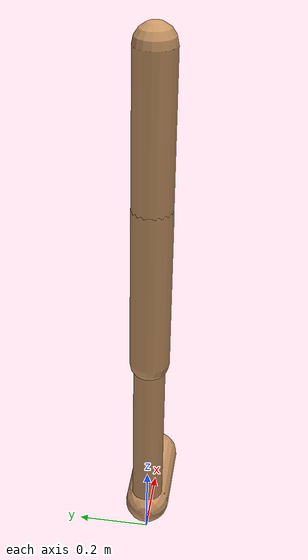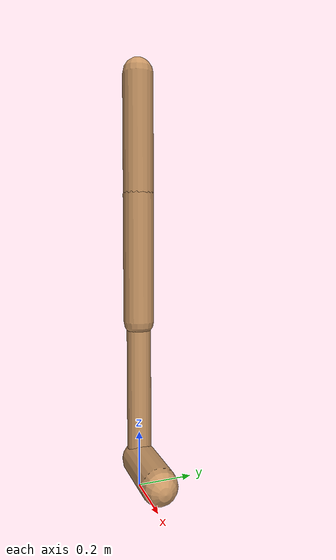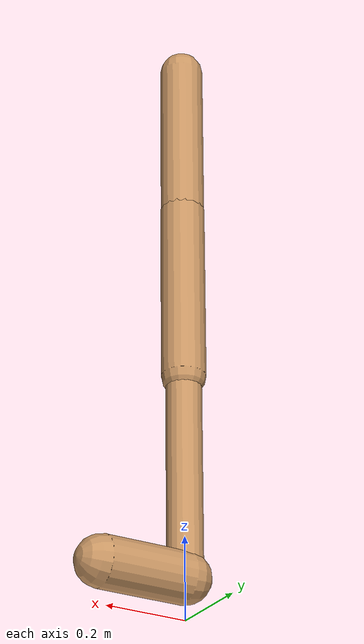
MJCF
<mujoco model="walker2d">
  <compiler angle="degree" coordinate="global" inertiafromgeom="true" />
  <default>
    <joint armature="0.01" damping=".1" limited="true" />
    <geom conaffinity="0" condim="3" contype="1" density="1000" friction="0.8 .1 .1" rgba="0.8 0.6 .4 1" />
  </default>
  <option integrator="RK4" timestep="0.002" />
  <worldbody>

    <body name="torso" pos="0 0 -0.006961106256902982">
      <joint armature="0" axis="1 0 0" damping="0" limited="false" name="ignorex" pos="0 0 0" stiffness="0" type="slide" />
      <joint armature="0" axis="0 0 1" damping="0" limited="false" name="ignorez" pos="0 0 0" ref="1.25" stiffness="0" type="slide" />
      <joint armature="0" axis="0 1 0" damping="0" limited="false" name="ignorey" pos="0 0 0" stiffness="0" type="hinge" />
      <geom fromto="0 0 1.45 0 0 1.05" name="torso_geom" size="0.052419366021524354" type="capsule" />
      <body name="thigh">
        <joint axis="0 -1 0" name="thigh_joint" pos="0 0 1.05" range="-150 0" type="hinge" />
        <geom fromto="0.0 0.0 1.05 0.0 0.0 0.6032973661216908" name="thigh_geom" size="0.053075739981684536" type="capsule" />
        <body name="leg" pos="0.0 0.0 0.003297366121690848">
          <joint axis="0 -1 0" name="leg_joint" pos="0 0 0.6" range="-150 0" type="hinge" />
          <geom fromto="0.0 0.0 0.6 0.0 0.0 0.1036637401352121" name="leg_geom" size="0.04246059198534763" type="capsule" />
          <body name="foot" pos="0.0 0.0 0.00366374013521209">
            <joint axis="0 -1 0" name="foot_joint" pos="0 0 0.1" range="-45 45" type="hinge" />
            <geom fromto="-0.0 0.0 0.09999999999999999 0.21335682803399472 0.0 0.09999999999999999" name="foot_geom" size="0.061248355854962355" type="capsule" />
          </body>
        </body>
      </body>

      <body name="thigh_left">
        <joint axis="0 -1 0" name="thigh_left_joint" pos="0 0 1.05" range="-150 0" type="hinge" />
        <geom fromto="0.0 0.0 1.05 0.0 0.0 0.6032973661216908" name="thigh_left_geom" rgba=".7 .3 .6 1" size="0.053075739981684536" type="capsule" />
        <body name="leg_left" pos="0.0 0.0 0.003297366121690848">
          <joint axis="0 -1 0" name="leg_left_joint" pos="0 0 0.6" range="-150 0" type="hinge" />
          <geom fromto="0.0 0.0 0.6 0.0 0.0 0.1036637401352121" name="leg_left_geom" rgba=".7 .3 .6 1" size="0.04246059198534763" type="capsule" />
          <body name="foot_left" pos="0.0 0.0 0.00366374013521209">
            <joint axis="0 -1 0" name="foot_left_joint" pos="0 0 0.1" range="-45 45" type="hinge" />
            <geom fromto="-0.0 0.0 0.09999999999999999 0.21335682803399472 0.0 0.09999999999999999" name="foot_left_geom" rgba=".7 .3 .6 1" size="0.061248355854962355" type="capsule" />
          </body>
        </body>
      </body>
    </body>
  </worldbody>
  <actuator>

    <motor ctrllimited="true" ctrlrange="-1.0 1.0" gear="100" joint="thigh_joint" />
    <motor ctrllimited="true" ctrlrange="-1.0 1.0" gear="100" joint="leg_joint" />
    <motor ctrllimited="true" ctrlrange="-1.0 1.0" gear="100" joint="foot_joint" />
    <motor ctrllimited="true" ctrlrange="-1.0 1.0" gear="100" joint="thigh_left_joint" />
    <motor ctrllimited="true" ctrlrange="-1.0 1.0" gear="100" joint="leg_left_joint" />
    <motor ctrllimited="true" ctrlrange="-1.0 1.0" gear="100" joint="foot_left_joint" />

  </actuator>
</mujoco>
